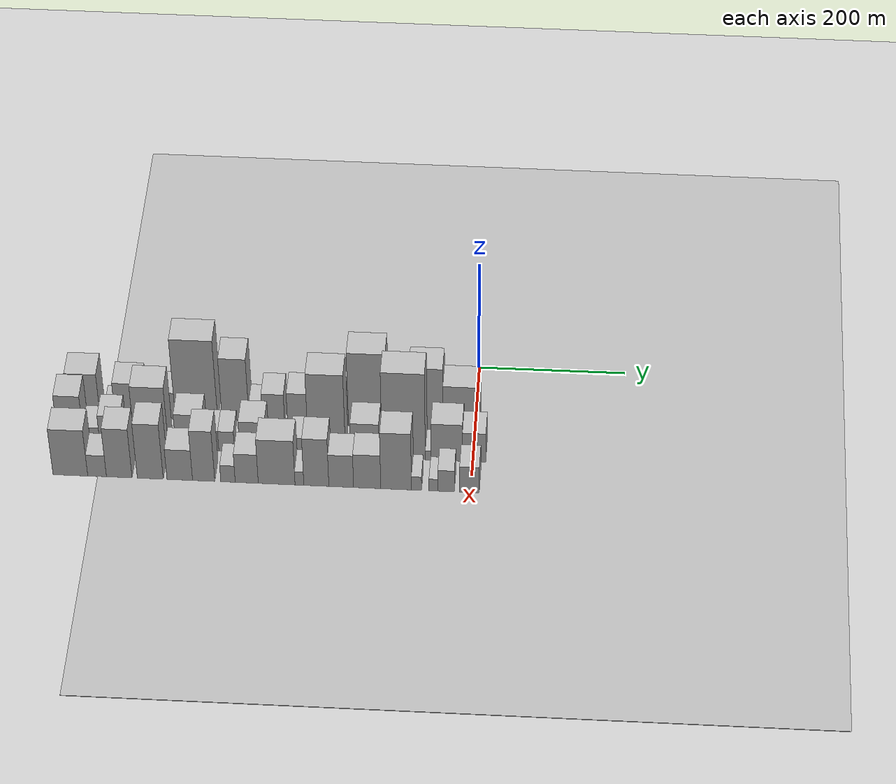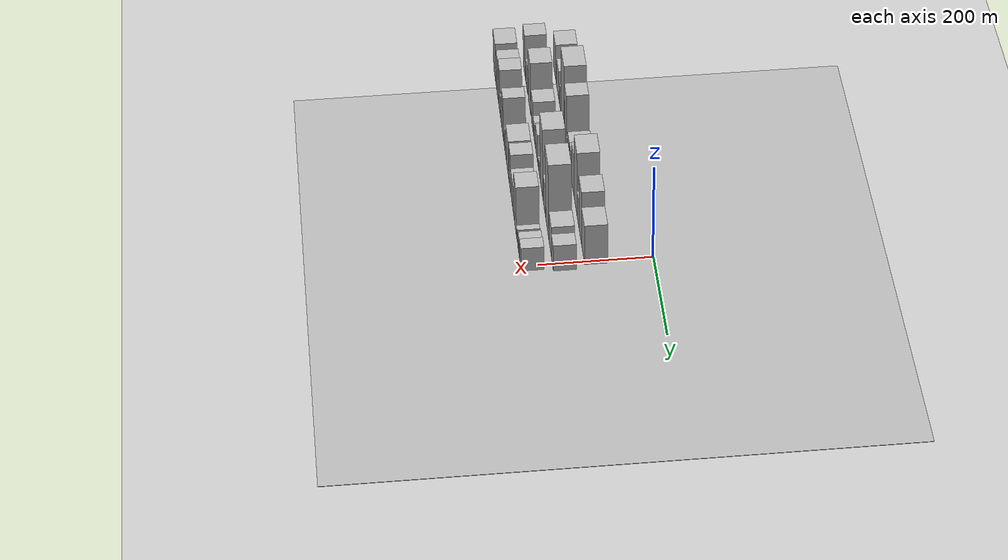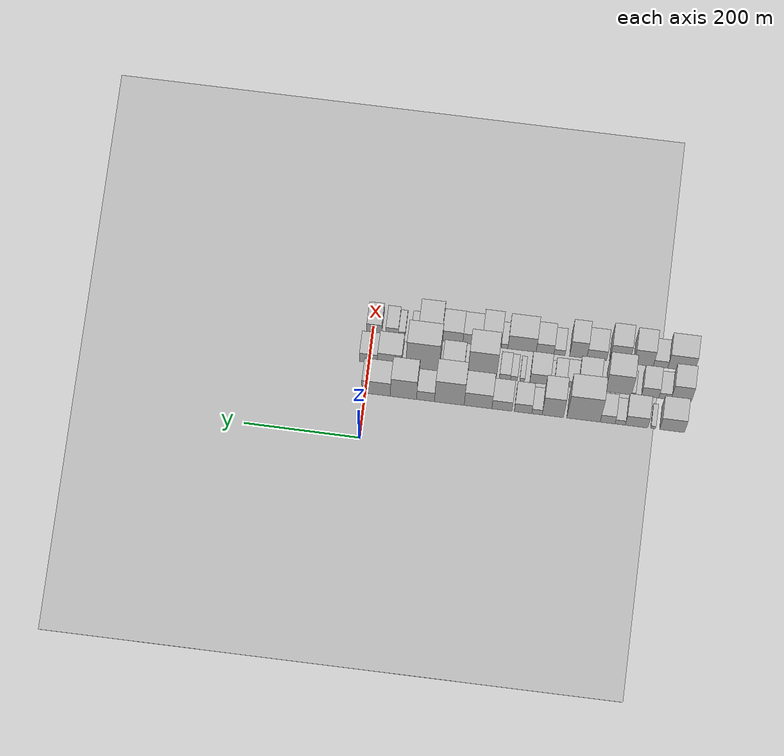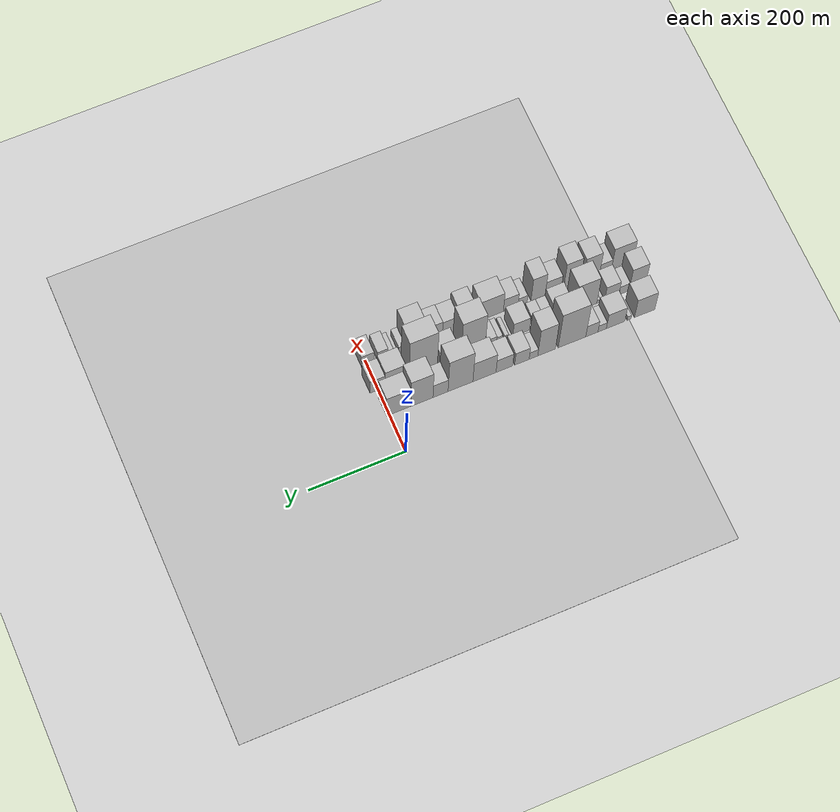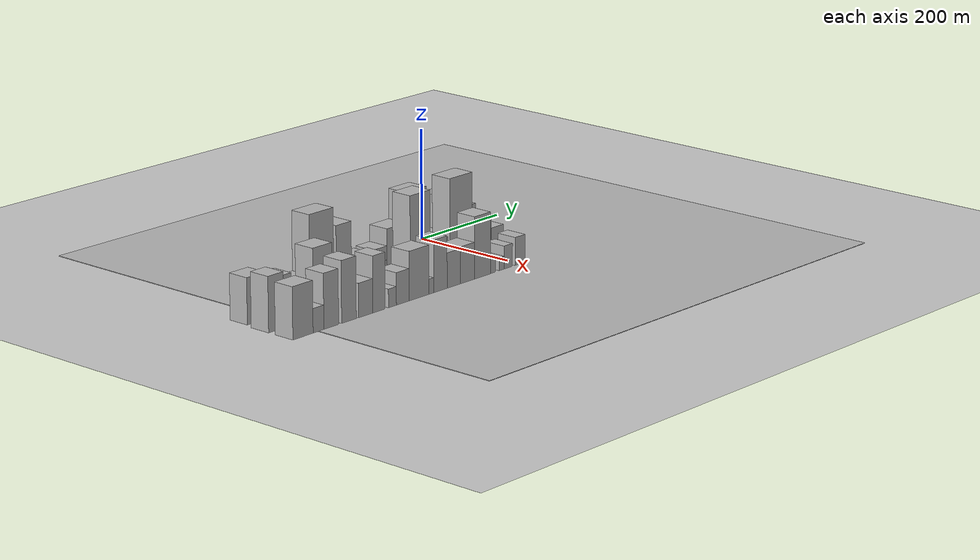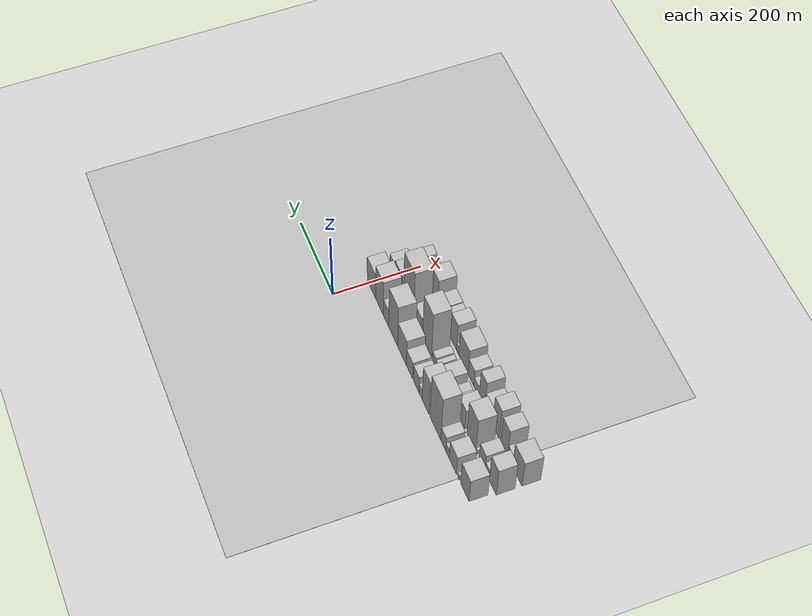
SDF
<sdf version="1.6">
 <world name="default">
  <include><name>ground_plane_1</name><uri>model://HANNAS_ground_plane</uri></include>
  <include>
   <name>ground_plane_2</name>
   <uri>model://HANNAS_ground_plane</uri>
   <pose>100 0 0  0 0 0</pose>
  </include>
  <model name="building_1">
   <static>1</static>
   <pose>100.0000 -532.4444 0 0.000000 0.000000 0.000000</pose>
   <link name="link">
    <pose>0 0 40.50 0 0 0</pose>
    <collision name="collision"><geometry><box><size>40.0000 43.1112 81.0000</size></box></geometry></collision>
    <visual name="visual">
     <cast_shadows>0</cast_shadows>
     <geometry><box><size>40.0000 43.1112 81.0000</size></box></geometry>
     <material>
      <script>
       <uri>model://HANNAS_wall/materials/scripts</uri>
       <uri>model://HANNAS_wall/materials/textures</uri>
       <name>vrc/HANNAS_wall</name>
      </script>
     </material>
    </visual>
   </link>
  </model>
  <model name="building_2">
   <static>1</static>
   <pose>100.0000 -499.6300 0 0.000000 0.000000 0.000000</pose>
   <link name="link">
    <pose>0 0 9.00 0 0 0</pose>
    <collision name="collision"><geometry><box><size>40.0000 8.5176 18.0000</size></box></geometry></collision>
    <visual name="visual">
     <cast_shadows>0</cast_shadows>
     <geometry><box><size>40.0000 8.5176 18.0000</size></box></geometry>
     <material>
      <script>
       <uri>model://HANNAS_wall/materials/scripts</uri>
       <uri>model://HANNAS_wall/materials/textures</uri>
       <name>vrc/HANNAS_wall</name>
      </script>
     </material>
    </visual>
   </link>
  </model>
  <model name="building_3">
   <static>1</static>
   <pose>100.0000 -470.8818 0 0.000000 0.000000 0.000000</pose>
   <link name="link">
    <pose>0 0 33.00 0 0 0</pose>
    <collision name="collision"><geometry><box><size>40.0000 38.9788 66.0000</size></box></geometry></collision>
    <visual name="visual">
     <cast_shadows>0</cast_shadows>
     <geometry><box><size>40.0000 38.9788 66.0000</size></box></geometry>
     <material>
      <script>
       <uri>model://HANNAS_wall/materials/scripts</uri>
       <uri>model://HANNAS_wall/materials/textures</uri>
       <name>vrc/HANNAS_wall</name>
      </script>
     </material>
    </visual>
   </link>
  </model>
  <model name="building_4">
   <static>1</static>
   <pose>100.0000 -442.5654 0 0.000000 0.000000 0.000000</pose>
   <link name="link">
    <pose>0 0 15.00 0 0 0</pose>
    <collision name="collision"><geometry><box><size>40.0000 17.6540 30.0000</size></box></geometry></collision>
    <visual name="visual">
     <cast_shadows>0</cast_shadows>
     <geometry><box><size>40.0000 17.6540 30.0000</size></box></geometry>
     <material>
      <script>
       <uri>model://HANNAS_wall/materials/scripts</uri>
       <uri>model://HANNAS_wall/materials/textures</uri>
       <name>vrc/HANNAS_wall</name>
      </script>
     </material>
    </visual>
   </link>
  </model>
  <model name="building_5">
   <static>1</static>
   <pose>100.0000 -420.7631 0 0.000000 0.000000 0.000000</pose>
   <link name="link">
    <pose>0 0 25.50 0 0 0</pose>
    <collision name="collision"><geometry><box><size>40.0000 25.9506 51.0000</size></box></geometry></collision>
    <visual name="visual">
     <cast_shadows>0</cast_shadows>
     <geometry><box><size>40.0000 25.9506 51.0000</size></box></geometry>
     <material>
      <script>
       <uri>model://HANNAS_wall/materials/scripts</uri>
       <uri>model://HANNAS_wall/materials/textures</uri>
       <name>vrc/HANNAS_wall</name>
      </script>
     </material>
    </visual>
   </link>
  </model>
  <model name="building_6">
   <static>1</static>
   <pose>100.0000 -378.8792 0 0.000000 0.000000 0.000000</pose>
   <link name="link">
    <pose>0 0 78.00 0 0 0</pose>
    <collision name="collision"><geometry><box><size>40.0000 57.8170 156.0000</size></box></geometry></collision>
    <visual name="visual">
     <cast_shadows>0</cast_shadows>
     <geometry><box><size>40.0000 57.8170 156.0000</size></box></geometry>
     <material>
      <script>
       <uri>model://HANNAS_wall/materials/scripts</uri>
       <uri>model://HANNAS_wall/materials/textures</uri>
       <name>vrc/HANNAS_wall</name>
      </script>
     </material>
    </visual>
   </link>
  </model>
  <model name="building_7">
   <static>1</static>
   <pose>100.0000 -325.5151 0 0.000000 0.000000 0.000000</pose>
   <link name="link">
    <pose>0 0 61.50 0 0 0</pose>
    <collision name="collision"><geometry><box><size>40.0000 36.9112 123.0000</size></box></geometry></collision>
    <visual name="visual">
     <cast_shadows>0</cast_shadows>
     <geometry><box><size>40.0000 36.9112 123.0000</size></box></geometry>
     <material>
      <script>
       <uri>model://HANNAS_wall/materials/scripts</uri>
       <uri>model://HANNAS_wall/materials/textures</uri>
       <name>vrc/HANNAS_wall</name>
      </script>
     </material>
    </visual>
   </link>
  </model>
  <model name="building_8">
   <static>1</static>
   <pose>100.0000 -298.0300 0 0.000000 0.000000 0.000000</pose>
   <link name="link">
    <pose>0 0 16.50 0 0 0</pose>
    <collision name="collision"><geometry><box><size>40.0000 18.0589 33.0000</size></box></geometry></collision>
    <visual name="visual">
     <cast_shadows>0</cast_shadows>
     <geometry><box><size>40.0000 18.0589 33.0000</size></box></geometry>
     <material>
      <script>
       <uri>model://HANNAS_wall/materials/scripts</uri>
       <uri>model://HANNAS_wall/materials/textures</uri>
       <name>vrc/HANNAS_wall</name>
      </script>
     </material>
    </visual>
   </link>
  </model>
  <model name="building_9">
   <static>1</static>
   <pose>100.0000 -273.8442 0 0.000000 0.000000 0.000000</pose>
   <link name="link">
    <pose>0 0 28.50 0 0 0</pose>
    <collision name="collision"><geometry><box><size>40.0000 30.3128 57.0000</size></box></geometry></collision>
    <visual name="visual">
     <cast_shadows>0</cast_shadows>
     <geometry><box><size>40.0000 30.3128 57.0000</size></box></geometry>
     <material>
      <script>
       <uri>model://HANNAS_wall/materials/scripts</uri>
       <uri>model://HANNAS_wall/materials/textures</uri>
       <name>vrc/HANNAS_wall</name>
      </script>
     </material>
    </visual>
   </link>
  </model>
  <model name="building_10">
   <static>1</static>
   <pose>100.0000 -237.2336 0 0.000000 0.000000 0.000000</pose>
   <link name="link">
    <pose>0 0 30.00 0 0 0</pose>
    <collision name="collision"><geometry><box><size>40.0000 34.9083 60.0000</size></box></geometry></collision>
    <visual name="visual">
     <cast_shadows>0</cast_shadows>
     <geometry><box><size>40.0000 34.9083 60.0000</size></box></geometry>
     <material>
      <script>
       <uri>model://HANNAS_wall/materials/scripts</uri>
       <uri>model://HANNAS_wall/materials/textures</uri>
       <name>vrc/HANNAS_wall</name>
      </script>
     </material>
    </visual>
   </link>
  </model>
  <model name="building_11">
   <static>1</static>
   <pose>100.0000 -195.7393 0 0.000000 0.000000 0.000000</pose>
   <link name="link">
    <pose>0 0 45.00 0 0 0</pose>
    <collision name="collision"><geometry><box><size>40.0000 48.0804 90.0000</size></box></geometry></collision>
    <visual name="visual">
     <cast_shadows>0</cast_shadows>
     <geometry><box><size>40.0000 48.0804 90.0000</size></box></geometry>
     <material>
      <script>
       <uri>model://HANNAS_wall/materials/scripts</uri>
       <uri>model://HANNAS_wall/materials/textures</uri>
       <name>vrc/HANNAS_wall</name>
      </script>
     </material>
    </visual>
   </link>
  </model>
  <model name="building_12">
   <static>1</static>
   <pose>100.0000 -145.9250 0 0.000000 0.000000 0.000000</pose>
   <link name="link">
    <pose>0 0 72.00 0 0 0</pose>
    <collision name="collision"><geometry><box><size>40.0000 51.5482 144.0000</size></box></geometry></collision>
    <visual name="visual">
     <cast_shadows>0</cast_shadows>
     <geometry><box><size>40.0000 51.5482 144.0000</size></box></geometry>
     <material>
      <script>
       <uri>model://HANNAS_wall/materials/scripts</uri>
       <uri>model://HANNAS_wall/materials/textures</uri>
       <name>vrc/HANNAS_wall</name>
      </script>
     </material>
    </visual>
   </link>
  </model>
  <model name="building_13">
   <static>1</static>
   <pose>100.0000 -104.5609 0 0.000000 0.000000 0.000000</pose>
   <link name="link">
    <pose>0 0 30.00 0 0 0</pose>
    <collision name="collision"><geometry><box><size>40.0000 31.1801 60.0000</size></box></geometry></collision>
    <visual name="visual">
     <cast_shadows>0</cast_shadows>
     <geometry><box><size>40.0000 31.1801 60.0000</size></box></geometry>
     <material>
      <script>
       <uri>model://HANNAS_wall/materials/scripts</uri>
       <uri>model://HANNAS_wall/materials/textures</uri>
       <name>vrc/HANNAS_wall</name>
      </script>
     </material>
    </visual>
   </link>
  </model>
  <model name="building_14">
   <static>1</static>
   <pose>100.0000 -66.1938 0 0.000000 0.000000 0.000000</pose>
   <link name="link">
    <pose>0 0 60.00 0 0 0</pose>
    <collision name="collision"><geometry><box><size>40.0000 45.5540 120.0000</size></box></geometry></collision>
    <visual name="visual">
     <cast_shadows>0</cast_shadows>
     <geometry><box><size>40.0000 45.5540 120.0000</size></box></geometry>
     <material>
      <script>
       <uri>model://HANNAS_wall/materials/scripts</uri>
       <uri>model://HANNAS_wall/materials/textures</uri>
       <name>vrc/HANNAS_wall</name>
      </script>
     </material>
    </visual>
   </link>
  </model>
  <model name="building_15">
   <static>1</static>
   <pose>100.0000 -18.5358 0 0.000000 0.000000 0.000000</pose>
   <link name="link">
    <pose>0 0 43.50 0 0 0</pose>
    <collision name="collision"><geometry><box><size>40.0000 49.7620 87.0000</size></box></geometry></collision>
    <visual name="visual">
     <cast_shadows>0</cast_shadows>
     <geometry><box><size>40.0000 49.7620 87.0000</size></box></geometry>
     <material>
      <script>
       <uri>model://HANNAS_wall/materials/scripts</uri>
       <uri>model://HANNAS_wall/materials/textures</uri>
       <name>vrc/HANNAS_wall</name>
      </script>
     </material>
    </visual>
   </link>
  </model>
  <model name="building_36">
   <static>1</static>
   <pose>155.0000 -542.4896 0 0.000000 0.000000 0.000000</pose>
   <link name="link">
    <pose>0 0 48.00 0 0 0</pose>
    <collision name="collision"><geometry><box><size>40.0000 35.0207 96.0000</size></box></geometry></collision>
    <visual name="visual">
     <cast_shadows>0</cast_shadows>
     <geometry><box><size>40.0000 35.0207 96.0000</size></box></geometry>
     <material>
      <script>
       <uri>model://HANNAS_wall/materials/scripts</uri>
       <uri>model://HANNAS_wall/materials/textures</uri>
       <name>vrc/HANNAS_wall</name>
      </script>
     </material>
    </visual>
   </link>
  </model>
  <model name="building_37">
   <static>1</static>
   <pose>155.0000 -514.3018 0 0.000000 0.000000 0.000000</pose>
   <link name="link">
    <pose>0 0 18.00 0 0 0</pose>
    <collision name="collision"><geometry><box><size>40.0000 21.3549 36.0000</size></box></geometry></collision>
    <visual name="visual">
     <cast_shadows>0</cast_shadows>
     <geometry><box><size>40.0000 21.3549 36.0000</size></box></geometry>
     <material>
      <script>
       <uri>model://HANNAS_wall/materials/scripts</uri>
       <uri>model://HANNAS_wall/materials/textures</uri>
       <name>vrc/HANNAS_wall</name>
      </script>
     </material>
    </visual>
   </link>
  </model>
  <model name="building_38">
   <static>1</static>
   <pose>155.0000 -488.5064 0 0.000000 0.000000 0.000000</pose>
   <link name="link">
    <pose>0 0 30.00 0 0 0</pose>
    <collision name="collision"><geometry><box><size>40.0000 30.2360 60.0000</size></box></geometry></collision>
    <visual name="visual">
     <cast_shadows>0</cast_shadows>
     <geometry><box><size>40.0000 30.2360 60.0000</size></box></geometry>
     <material>
      <script>
       <uri>model://HANNAS_wall/materials/scripts</uri>
       <uri>model://HANNAS_wall/materials/textures</uri>
       <name>vrc/HANNAS_wall</name>
      </script>
     </material>
    </visual>
   </link>
  </model>
  <model name="building_39">
   <static>1</static>
   <pose>155.0000 -459.8182 0 0.000000 0.000000 0.000000</pose>
   <link name="link">
    <pose>0 0 7.50 0 0 0</pose>
    <collision name="collision"><geometry><box><size>40.0000 7.1402 15.0000</size></box></geometry></collision>
    <visual name="visual">
     <cast_shadows>0</cast_shadows>
     <geometry><box><size>40.0000 7.1402 15.0000</size></box></geometry>
     <material>
      <script>
       <uri>model://HANNAS_wall/materials/scripts</uri>
       <uri>model://HANNAS_wall/materials/textures</uri>
       <name>vrc/HANNAS_wall</name>
      </script>
     </material>
    </visual>
   </link>
  </model>
  <model name="building_40">
   <static>1</static>
   <pose>155.0000 -433.5042 0 0.000000 0.000000 0.000000</pose>
   <link name="link">
    <pose>0 0 60.00 0 0 0</pose>
    <collision name="collision"><geometry><box><size>40.0000 45.4879 120.0000</size></box></geometry></collision>
    <visual name="visual">
     <cast_shadows>0</cast_shadows>
     <geometry><box><size>40.0000 45.4879 120.0000</size></box></geometry>
     <material>
      <script>
       <uri>model://HANNAS_wall/materials/scripts</uri>
       <uri>model://HANNAS_wall/materials/textures</uri>
       <name>vrc/HANNAS_wall</name>
      </script>
     </material>
    </visual>
   </link>
  </model>
  <model name="building_41">
   <static>1</static>
   <pose>155.0000 -381.8567 0 0.000000 0.000000 0.000000</pose>
   <link name="link">
    <pose>0 0 34.50 0 0 0</pose>
    <collision name="collision"><geometry><box><size>40.0000 37.8069 69.0000</size></box></geometry></collision>
    <visual name="visual">
     <cast_shadows>0</cast_shadows>
     <geometry><box><size>40.0000 37.8069 69.0000</size></box></geometry>
     <material>
      <script>
       <uri>model://HANNAS_wall/materials/scripts</uri>
       <uri>model://HANNAS_wall/materials/textures</uri>
       <name>vrc/HANNAS_wall</name>
      </script>
     </material>
    </visual>
   </link>
  </model>
  <model name="building_42">
   <static>1</static>
   <pose>155.0000 -352.8222 0 0.000000 0.000000 0.000000</pose>
   <link name="link">
    <pose>0 0 19.50 0 0 0</pose>
    <collision name="collision"><geometry><box><size>40.0000 20.2622 39.0000</size></box></geometry></collision>
    <visual name="visual">
     <cast_shadows>0</cast_shadows>
     <geometry><box><size>40.0000 20.2622 39.0000</size></box></geometry>
     <material>
      <script>
       <uri>model://HANNAS_wall/materials/scripts</uri>
       <uri>model://HANNAS_wall/materials/textures</uri>
       <name>vrc/HANNAS_wall</name>
      </script>
     </material>
    </visual>
   </link>
  </model>
  <model name="building_43">
   <static>1</static>
   <pose>155.0000 -332.0538 0 0.000000 0.000000 0.000000</pose>
   <link name="link">
    <pose>0 0 19.50 0 0 0</pose>
    <collision name="collision"><geometry><box><size>40.0000 21.2746 39.0000</size></box></geometry></collision>
    <visual name="visual">
     <cast_shadows>0</cast_shadows>
     <geometry><box><size>40.0000 21.2746 39.0000</size></box></geometry>
     <material>
      <script>
       <uri>model://HANNAS_wall/materials/scripts</uri>
       <uri>model://HANNAS_wall/materials/textures</uri>
       <name>vrc/HANNAS_wall</name>
      </script>
     </material>
    </visual>
   </link>
  </model>
  <model name="building_44">
   <static>1</static>
   <pose>155.0000 -317.8162 0 0.000000 0.000000 0.000000</pose>
   <link name="link">
    <pose>0 0 9.00 0 0 0</pose>
    <collision name="collision"><geometry><box><size>40.0000 7.2006 18.0000</size></box></geometry></collision>
    <visual name="visual">
     <cast_shadows>0</cast_shadows>
     <geometry><box><size>40.0000 7.2006 18.0000</size></box></geometry>
     <material>
      <script>
       <uri>model://HANNAS_wall/materials/scripts</uri>
       <uri>model://HANNAS_wall/materials/textures</uri>
       <name>vrc/HANNAS_wall</name>
      </script>
     </material>
    </visual>
   </link>
  </model>
  <model name="building_45">
   <static>1</static>
   <pose>155.0000 -296.7546 0 0.000000 0.000000 0.000000</pose>
   <link name="link">
    <pose>0 0 30.00 0 0 0</pose>
    <collision name="collision"><geometry><box><size>40.0000 34.9225 60.0000</size></box></geometry></collision>
    <visual name="visual">
     <cast_shadows>0</cast_shadows>
     <geometry><box><size>40.0000 34.9225 60.0000</size></box></geometry>
     <material>
      <script>
       <uri>model://HANNAS_wall/materials/scripts</uri>
       <uri>model://HANNAS_wall/materials/textures</uri>
       <name>vrc/HANNAS_wall</name>
      </script>
     </material>
    </visual>
   </link>
  </model>
  <model name="building_46">
   <static>1</static>
   <pose>155.0000 -266.0145 0 0.000000 0.000000 0.000000</pose>
   <link name="link">
    <pose>0 0 10.50 0 0 0</pose>
    <collision name="collision"><geometry><box><size>40.0000 8.5578 21.0000</size></box></geometry></collision>
    <visual name="visual">
     <cast_shadows>0</cast_shadows>
     <geometry><box><size>40.0000 8.5578 21.0000</size></box></geometry>
     <material>
      <script>
       <uri>model://HANNAS_wall/materials/scripts</uri>
       <uri>model://HANNAS_wall/materials/textures</uri>
       <name>vrc/HANNAS_wall</name>
      </script>
     </material>
    </visual>
   </link>
  </model>
  <model name="building_47">
   <static>1</static>
   <pose>155.0000 -251.6435 0 0.000000 0.000000 0.000000</pose>
   <link name="link">
    <pose>0 0 13.50 0 0 0</pose>
    <collision name="collision"><geometry><box><size>40.0000 12.1842 27.0000</size></box></geometry></collision>
    <visual name="visual">
     <cast_shadows>0</cast_shadows>
     <geometry><box><size>40.0000 12.1842 27.0000</size></box></geometry>
     <material>
      <script>
       <uri>model://HANNAS_wall/materials/scripts</uri>
       <uri>model://HANNAS_wall/materials/textures</uri>
       <name>vrc/HANNAS_wall</name>
      </script>
     </material>
    </visual>
   </link>
  </model>
  <model name="building_48">
   <static>1</static>
   <pose>155.0000 -235.8943 0 0.000000 0.000000 0.000000</pose>
   <link name="link">
    <pose>0 0 16.50 0 0 0</pose>
    <collision name="collision"><geometry><box><size>40.0000 19.3142 33.0000</size></box></geometry></collision>
    <visual name="visual">
     <cast_shadows>0</cast_shadows>
     <geometry><box><size>40.0000 19.3142 33.0000</size></box></geometry>
     <material>
      <script>
       <uri>model://HANNAS_wall/materials/scripts</uri>
       <uri>model://HANNAS_wall/materials/textures</uri>
       <name>vrc/HANNAS_wall</name>
      </script>
     </material>
    </visual>
   </link>
  </model>
  <model name="building_49">
   <static>1</static>
   <pose>155.0000 -196.2614 0 0.000000 0.000000 0.000000</pose>
   <link name="link">
    <pose>0 0 79.50 0 0 0</pose>
    <collision name="collision"><geometry><box><size>40.0000 49.9515 159.0000</size></box></geometry></collision>
    <visual name="visual">
     <cast_shadows>0</cast_shadows>
     <geometry><box><size>40.0000 49.9515 159.0000</size></box></geometry>
     <material>
      <script>
       <uri>model://HANNAS_wall/materials/scripts</uri>
       <uri>model://HANNAS_wall/materials/textures</uri>
       <name>vrc/HANNAS_wall</name>
      </script>
     </material>
    </visual>
   </link>
  </model>
  <model name="building_50">
   <static>1</static>
   <pose>155.0000 -145.0763 0 0.000000 0.000000 0.000000</pose>
   <link name="link">
    <pose>0 0 33.00 0 0 0</pose>
    <collision name="collision"><geometry><box><size>40.0000 38.4187 66.0000</size></box></geometry></collision>
    <visual name="visual">
     <cast_shadows>0</cast_shadows>
     <geometry><box><size>40.0000 38.4187 66.0000</size></box></geometry>
     <material>
      <script>
       <uri>model://HANNAS_wall/materials/scripts</uri>
       <uri>model://HANNAS_wall/materials/textures</uri>
       <name>vrc/HANNAS_wall</name>
      </script>
     </material>
    </visual>
   </link>
  </model>
  <model name="building_51">
   <static>1</static>
   <pose>155.0000 -92.8426 0 0.000000 0.000000 0.000000</pose>
   <link name="link">
    <pose>0 0 84.00 0 0 0</pose>
    <collision name="collision"><geometry><box><size>40.0000 58.0487 168.0000</size></box></geometry></collision>
    <visual name="visual">
     <cast_shadows>0</cast_shadows>
     <geometry><box><size>40.0000 58.0487 168.0000</size></box></geometry>
     <material>
      <script>
       <uri>model://HANNAS_wall/materials/scripts</uri>
       <uri>model://HANNAS_wall/materials/textures</uri>
       <name>vrc/HANNAS_wall</name>
      </script>
     </material>
    </visual>
   </link>
  </model>
  <model name="building_52">
   <static>1</static>
   <pose>155.0000 -59.9376 0 0.000000 0.000000 0.000000</pose>
   <link name="link">
    <pose>0 0 9.00 0 0 0</pose>
    <collision name="collision"><geometry><box><size>40.0000 7.7614 18.0000</size></box></geometry></collision>
    <visual name="visual">
     <cast_shadows>0</cast_shadows>
     <geometry><box><size>40.0000 7.7614 18.0000</size></box></geometry>
     <material>
      <script>
       <uri>model://HANNAS_wall/materials/scripts</uri>
       <uri>model://HANNAS_wall/materials/textures</uri>
       <name>vrc/HANNAS_wall</name>
      </script>
     </material>
    </visual>
   </link>
  </model>
  <model name="building_53">
   <static>1</static>
   <pose>155.0000 -34.9760 0 0.000000 0.000000 0.000000</pose>
   <link name="link">
    <pose>0 0 36.00 0 0 0</pose>
    <collision name="collision"><geometry><box><size>40.0000 42.1617 72.0000</size></box></geometry></collision>
    <visual name="visual">
     <cast_shadows>0</cast_shadows>
     <geometry><box><size>40.0000 42.1617 72.0000</size></box></geometry>
     <material>
      <script>
       <uri>model://HANNAS_wall/materials/scripts</uri>
       <uri>model://HANNAS_wall/materials/textures</uri>
       <name>vrc/HANNAS_wall</name>
      </script>
     </material>
    </visual>
   </link>
  </model>
  <model name="building_54">
   <static>1</static>
   <pose>155.0000 1.8144 0 0.000000 0.000000 0.000000</pose>
   <link name="link">
    <pose>0 0 28.50 0 0 0</pose>
    <collision name="collision"><geometry><box><size>40.0000 31.4192 57.0000</size></box></geometry></collision>
    <visual name="visual">
     <cast_shadows>0</cast_shadows>
     <geometry><box><size>40.0000 31.4192 57.0000</size></box></geometry>
     <material>
      <script>
       <uri>model://HANNAS_wall/materials/scripts</uri>
       <uri>model://HANNAS_wall/materials/textures</uri>
       <name>vrc/HANNAS_wall</name>
      </script>
     </material>
    </visual>
   </link>
  </model>
  <model name="building_72">
   <static>1</static>
   <pose>210.0000 -536.6087 0 0.000000 0.000000 0.000000</pose>
   <link name="link">
    <pose>0 0 45.00 0 0 0</pose>
    <collision name="collision"><geometry><box><size>40.0000 46.7827 90.0000</size></box></geometry></collision>
    <visual name="visual">
     <cast_shadows>0</cast_shadows>
     <geometry><box><size>40.0000 46.7827 90.0000</size></box></geometry>
     <material>
      <script>
       <uri>model://HANNAS_wall/materials/scripts</uri>
       <uri>model://HANNAS_wall/materials/textures</uri>
       <name>vrc/HANNAS_wall</name>
      </script>
     </material>
    </visual>
   </link>
  </model>
  <model name="building_73">
   <static>1</static>
   <pose>210.0000 -500.6430 0 0.000000 0.000000 0.000000</pose>
   <link name="link">
    <pose>0 0 21.00 0 0 0</pose>
    <collision name="collision"><geometry><box><size>40.0000 25.1487 42.0000</size></box></geometry></collision>
    <visual name="visual">
     <cast_shadows>0</cast_shadows>
     <geometry><box><size>40.0000 25.1487 42.0000</size></box></geometry>
     <material>
      <script>
       <uri>model://HANNAS_wall/materials/scripts</uri>
       <uri>model://HANNAS_wall/materials/textures</uri>
       <name>vrc/HANNAS_wall</name>
      </script>
     </material>
    </visual>
   </link>
  </model>
  <model name="building_74">
   <static>1</static>
   <pose>210.0000 -470.7909 0 0.000000 0.000000 0.000000</pose>
   <link name="link">
    <pose>0 0 48.00 0 0 0</pose>
    <collision name="collision"><geometry><box><size>40.0000 34.5555 96.0000</size></box></geometry></collision>
    <visual name="visual">
     <cast_shadows>0</cast_shadows>
     <geometry><box><size>40.0000 34.5555 96.0000</size></box></geometry>
     <material>
      <script>
       <uri>model://HANNAS_wall/materials/scripts</uri>
       <uri>model://HANNAS_wall/materials/textures</uri>
       <name>vrc/HANNAS_wall</name>
      </script>
     </material>
    </visual>
   </link>
  </model>
  <model name="building_75">
   <static>1</static>
   <pose>210.0000 -429.0506 0 0.000000 0.000000 0.000000</pose>
   <link name="link">
    <pose>0 0 54.00 0 0 0</pose>
    <collision name="collision"><geometry><box><size>40.0000 34.9252 108.0000</size></box></geometry></collision>
    <visual name="visual">
     <cast_shadows>0</cast_shadows>
     <geometry><box><size>40.0000 34.9252 108.0000</size></box></geometry>
     <material>
      <script>
       <uri>model://HANNAS_wall/materials/scripts</uri>
       <uri>model://HANNAS_wall/materials/textures</uri>
       <name>vrc/HANNAS_wall</name>
      </script>
     </material>
    </visual>
   </link>
  </model>
  <model name="building_76">
   <static>1</static>
   <pose>210.0000 -389.3982 0 0.000000 0.000000 0.000000</pose>
   <link name="link">
    <pose>0 0 30.00 0 0 0</pose>
    <collision name="collision"><geometry><box><size>40.0000 34.3796 60.0000</size></box></geometry></collision>
    <visual name="visual">
     <cast_shadows>0</cast_shadows>
     <geometry><box><size>40.0000 34.3796 60.0000</size></box></geometry>
     <material>
      <script>
       <uri>model://HANNAS_wall/materials/scripts</uri>
       <uri>model://HANNAS_wall/materials/textures</uri>
       <name>vrc/HANNAS_wall</name>
      </script>
     </material>
    </visual>
   </link>
  </model>
  <model name="building_77">
   <static>1</static>
   <pose>210.0000 -357.2541 0 0.000000 0.000000 0.000000</pose>
   <link name="link">
    <pose>0 0 49.50 0 0 0</pose>
    <collision name="collision"><geometry><box><size>40.0000 29.9087 99.0000</size></box></geometry></collision>
    <visual name="visual">
     <cast_shadows>0</cast_shadows>
     <geometry><box><size>40.0000 29.9087 99.0000</size></box></geometry>
     <material>
      <script>
       <uri>model://HANNAS_wall/materials/scripts</uri>
       <uri>model://HANNAS_wall/materials/textures</uri>
       <name>vrc/HANNAS_wall</name>
      </script>
     </material>
    </visual>
   </link>
  </model>
  <model name="building_78">
   <static>1</static>
   <pose>210.0000 -324.6204 0 0.000000 0.000000 0.000000</pose>
   <link name="link">
    <pose>0 0 16.50 0 0 0</pose>
    <collision name="collision"><geometry><box><size>40.0000 19.3586 33.0000</size></box></geometry></collision>
    <visual name="visual">
     <cast_shadows>0</cast_shadows>
     <geometry><box><size>40.0000 19.3586 33.0000</size></box></geometry>
     <material>
      <script>
       <uri>model://HANNAS_wall/materials/scripts</uri>
       <uri>model://HANNAS_wall/materials/textures</uri>
       <name>vrc/HANNAS_wall</name>
      </script>
     </material>
    </visual>
   </link>
  </model>
  <model name="building_79">
   <static>1</static>
   <pose>210.0000 -299.4779 0 0.000000 0.000000 0.000000</pose>
   <link name="link">
    <pose>0 0 28.50 0 0 0</pose>
    <collision name="collision"><geometry><box><size>40.0000 30.9264 57.0000</size></box></geometry></collision>
    <visual name="visual">
     <cast_shadows>0</cast_shadows>
     <geometry><box><size>40.0000 30.9264 57.0000</size></box></geometry>
     <material>
      <script>
       <uri>model://HANNAS_wall/materials/scripts</uri>
       <uri>model://HANNAS_wall/materials/textures</uri>
       <name>vrc/HANNAS_wall</name>
      </script>
     </material>
    </visual>
   </link>
  </model>
  <model name="building_80">
   <static>1</static>
   <pose>210.0000 -259.3136 0 0.000000 0.000000 0.000000</pose>
   <link name="link">
    <pose>0 0 43.50 0 0 0</pose>
    <collision name="collision"><geometry><box><size>40.0000 49.4023 87.0000</size></box></geometry></collision>
    <visual name="visual">
     <cast_shadows>0</cast_shadows>
     <geometry><box><size>40.0000 49.4023 87.0000</size></box></geometry>
     <material>
      <script>
       <uri>model://HANNAS_wall/materials/scripts</uri>
       <uri>model://HANNAS_wall/materials/textures</uri>
       <name>vrc/HANNAS_wall</name>
      </script>
     </material>
    </visual>
   </link>
  </model>
  <model name="building_81">
   <static>1</static>
   <pose>210.0000 -228.7443 0 0.000000 0.000000 0.000000</pose>
   <link name="link">
    <pose>0 0 13.50 0 0 0</pose>
    <collision name="collision"><geometry><box><size>40.0000 11.7364 27.0000</size></box></geometry></collision>
    <visual name="visual">
     <cast_shadows>0</cast_shadows>
     <geometry><box><size>40.0000 11.7364 27.0000</size></box></geometry>
     <material>
      <script>
       <uri>model://HANNAS_wall/materials/scripts</uri>
       <uri>model://HANNAS_wall/materials/textures</uri>
       <name>vrc/HANNAS_wall</name>
      </script>
     </material>
    </visual>
   </link>
  </model>
  <model name="building_82">
   <static>1</static>
   <pose>210.0000 -206.1119 0 0.000000 0.000000 0.000000</pose>
   <link name="link">
    <pose>0 0 46.50 0 0 0</pose>
    <collision name="collision"><geometry><box><size>40.0000 33.5283 93.0000</size></box></geometry></collision>
    <visual name="visual">
     <cast_shadows>0</cast_shadows>
     <geometry><box><size>40.0000 33.5283 93.0000</size></box></geometry>
     <material>
      <script>
       <uri>model://HANNAS_wall/materials/scripts</uri>
       <uri>model://HANNAS_wall/materials/textures</uri>
       <name>vrc/HANNAS_wall</name>
      </script>
     </material>
    </visual>
   </link>
  </model>
  <model name="building_83">
   <static>1</static>
   <pose>210.0000 -172.7792 0 0.000000 0.000000 0.000000</pose>
   <link name="link">
    <pose>0 0 31.50 0 0 0</pose>
    <collision name="collision"><geometry><box><size>40.0000 33.1371 63.0000</size></box></geometry></collision>
    <visual name="visual">
     <cast_shadows>0</cast_shadows>
     <geometry><box><size>40.0000 33.1371 63.0000</size></box></geometry>
     <material>
      <script>
       <uri>model://HANNAS_wall/materials/scripts</uri>
       <uri>model://HANNAS_wall/materials/textures</uri>
       <name>vrc/HANNAS_wall</name>
      </script>
     </material>
    </visual>
   </link>
  </model>
  <model name="building_84">
   <static>1</static>
   <pose>210.0000 -137.9955 0 0.000000 0.000000 0.000000</pose>
   <link name="link">
    <pose>0 0 33.00 0 0 0</pose>
    <collision name="collision"><geometry><box><size>40.0000 36.4303 66.0000</size></box></geometry></collision>
    <visual name="visual">
     <cast_shadows>0</cast_shadows>
     <geometry><box><size>40.0000 36.4303 66.0000</size></box></geometry>
     <material>
      <script>
       <uri>model://HANNAS_wall/materials/scripts</uri>
       <uri>model://HANNAS_wall/materials/textures</uri>
       <name>vrc/HANNAS_wall</name>
      </script>
     </material>
    </visual>
   </link>
  </model>
  <model name="building_85">
   <static>1</static>
   <pose>210.0000 -99.2679 0 0.000000 0.000000 0.000000</pose>
   <link name="link">
    <pose>0 0 55.50 0 0 0</pose>
    <collision name="collision"><geometry><box><size>40.0000 41.0250 111.0000</size></box></geometry></collision>
    <visual name="visual">
     <cast_shadows>0</cast_shadows>
     <geometry><box><size>40.0000 41.0250 111.0000</size></box></geometry>
     <material>
      <script>
       <uri>model://HANNAS_wall/materials/scripts</uri>
       <uri>model://HANNAS_wall/materials/textures</uri>
       <name>vrc/HANNAS_wall</name>
      </script>
     </material>
    </visual>
   </link>
  </model>
  <model name="building_86">
   <static>1</static>
   <pose>210.0000 -72.0275 0 0.000000 0.000000 0.000000</pose>
   <link name="link">
    <pose>0 0 13.50 0 0 0</pose>
    <collision name="collision"><geometry><box><size>40.0000 13.4558 27.0000</size></box></geometry></collision>
    <visual name="visual">
     <cast_shadows>0</cast_shadows>
     <geometry><box><size>40.0000 13.4558 27.0000</size></box></geometry>
     <material>
      <script>
       <uri>model://HANNAS_wall/materials/scripts</uri>
       <uri>model://HANNAS_wall/materials/textures</uri>
       <name>vrc/HANNAS_wall</name>
      </script>
     </material>
    </visual>
   </link>
  </model>
  <model name="building_87">
   <static>1</static>
   <pose>210.0000 -49.3863 0 0.000000 0.000000 0.000000</pose>
   <link name="link">
    <pose>0 0 12.00 0 0 0</pose>
    <collision name="collision"><geometry><box><size>40.0000 11.8268 24.0000</size></box></geometry></collision>
    <visual name="visual">
     <cast_shadows>0</cast_shadows>
     <geometry><box><size>40.0000 11.8268 24.0000</size></box></geometry>
     <material>
      <script>
       <uri>model://HANNAS_wall/materials/scripts</uri>
       <uri>model://HANNAS_wall/materials/textures</uri>
       <name>vrc/HANNAS_wall</name>
      </script>
     </material>
    </visual>
   </link>
  </model>
  <model name="building_88">
   <static>1</static>
   <pose>210.0000 -32.4648 0 0.000000 0.000000 0.000000</pose>
   <link name="link">
    <pose>0 0 21.00 0 0 0</pose>
    <collision name="collision"><geometry><box><size>40.0000 22.0161 42.0000</size></box></geometry></collision>
    <visual name="visual">
     <cast_shadows>0</cast_shadows>
     <geometry><box><size>40.0000 22.0161 42.0000</size></box></geometry>
     <material>
      <script>
       <uri>model://HANNAS_wall/materials/scripts</uri>
       <uri>model://HANNAS_wall/materials/textures</uri>
       <name>vrc/HANNAS_wall</name>
      </script>
     </material>
    </visual>
   </link>
  </model>
  <model name="building_89">
   <static>1</static>
   <pose>210.0000 -1.3499 0 0.000000 0.000000 0.000000</pose>
   <link name="link">
    <pose>0 0 25.50 0 0 0</pose>
    <collision name="collision"><geometry><box><size>40.0000 26.2138 51.0000</size></box></geometry></collision>
    <visual name="visual">
     <cast_shadows>0</cast_shadows>
     <geometry><box><size>40.0000 26.2138 51.0000</size></box></geometry>
     <material>
      <script>
       <uri>model://HANNAS_wall/materials/scripts</uri>
       <uri>model://HANNAS_wall/materials/textures</uri>
       <name>vrc/HANNAS_wall</name>
      </script>
     </material>
    </visual>
   </link>
  </model>
 </world>
</sdf>
